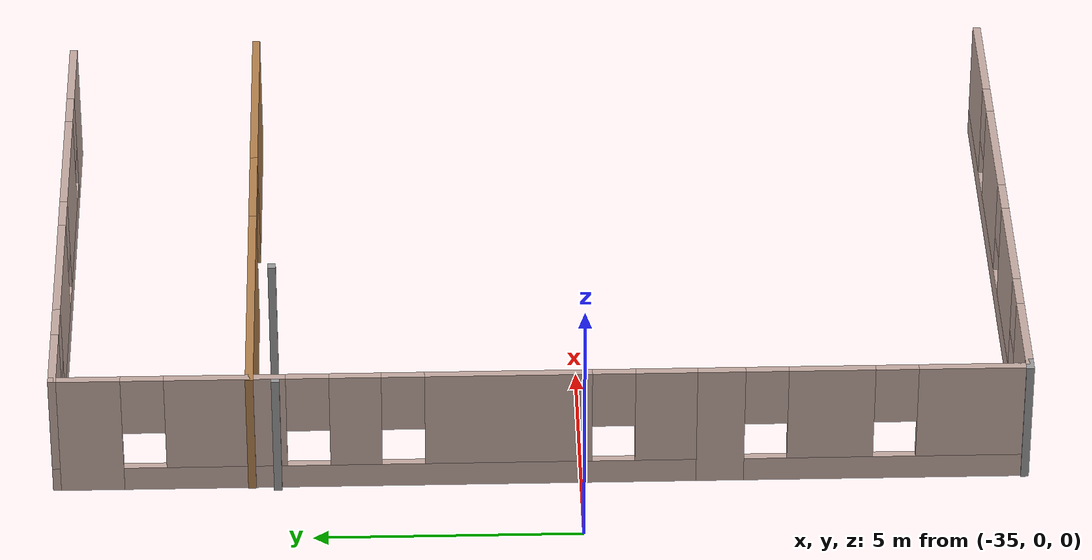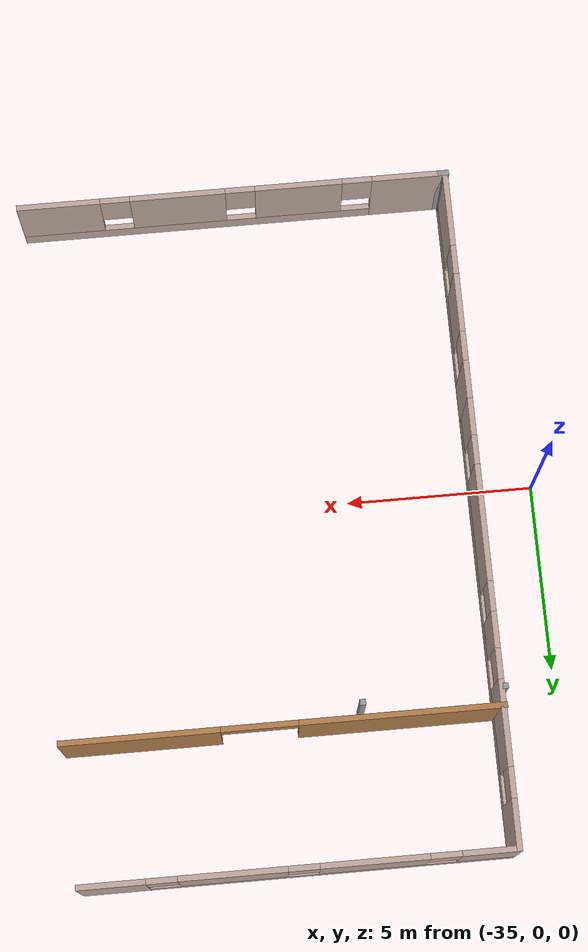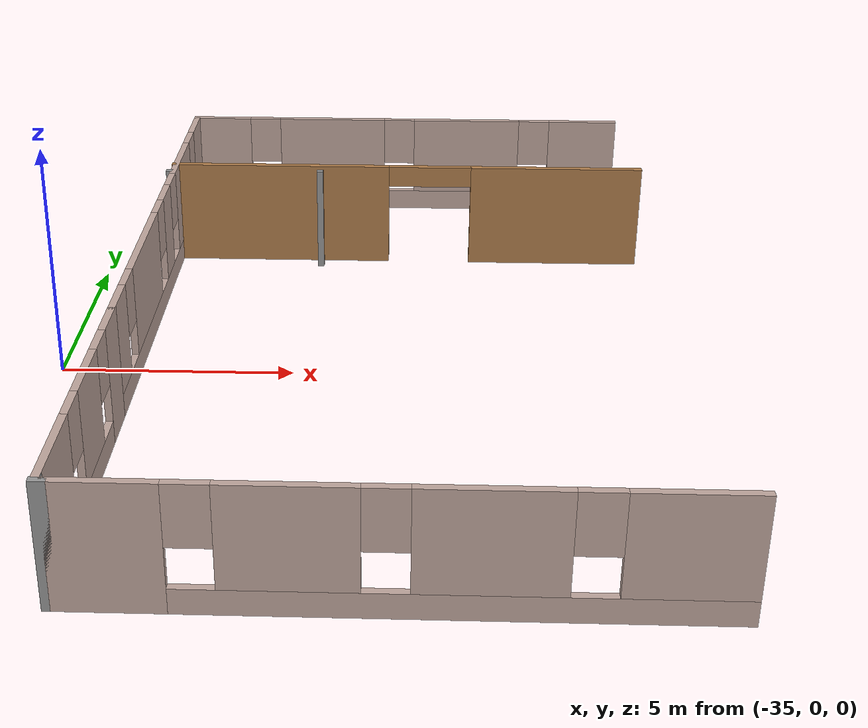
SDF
<sdf version="1.6">
 <model name="FloorPlan">
  <pose>-3.5402 -2.3631 0 0 -0 0</pose>
  <link name="Wall_13">
   <pose>-24.2574 12.1498 0 0 -0 3.14159</pose>
   <visual name="Wall_13_Visual_0">
    <pose>-4.7442 0 1.25 0 -0 0</pose>
    <geometry><box><size>1.7616 0.15 2.5</size></box></geometry>
    <material>
     <script><uri>file://media/materials/scripts/gazebo.material</uri><name>Gazebo/Grey</name></script>
     <ambient>0.760784 0.662745 0.627451 1</ambient>
    </material>
    <meta><layer>0</layer></meta>
   </visual>
   <collision name="Wall_13_Collision_0">
    <geometry><box><size>1.7616 0.15 2.5</size></box></geometry>
    <pose>-4.7442 0 1.25 0 -0 0</pose>
   </collision>
   <visual name="Wall_13_Visual_1">
    <pose>0.880798 0 0.25 0 -0 0</pose>
    <geometry><box><size>9.4884 0.15 0.5</size></box></geometry>
    <material>
     <script><uri>file://media/materials/scripts/gazebo.material</uri><name>Gazebo/Grey</name></script>
     <ambient>0.760784 0.662745 0.627451 1</ambient>
    </material>
    <meta><layer>0</layer></meta>
   </visual>
   <collision name="Wall_13_Collision_1">
    <geometry><box><size>9.4884 0.15 0.5</size></box></geometry>
    <pose>0.880798 0 0.25 0 -0 0</pose>
   </collision>
   <visual name="Wall_13_Visual_2">
    <pose>-1.67107 0 1.5 0 -0 0</pose>
    <geometry><box><size>2.78467 0.15 2</size></box></geometry>
    <material>
     <script><uri>file://media/materials/scripts/gazebo.material</uri><name>Gazebo/Grey</name></script>
     <ambient>0.760784 0.662745 0.627451 1</ambient>
    </material>
    <meta><layer>0</layer></meta>
   </visual>
   <collision name="Wall_13_Collision_2">
    <geometry><box><size>2.78467 0.15 2</size></box></geometry>
    <pose>-1.67107 0 1.5 0 -0 0</pose>
   </collision>
   <visual name="Wall_13_Visual_3">
    <pose>1.9136 0 1.5 0 -0 0</pose>
    <geometry><box><size>2.78467 0.15 2</size></box></geometry>
    <material>
     <script><uri>file://media/materials/scripts/gazebo.material</uri><name>Gazebo/Grey</name></script>
     <ambient>0.760784 0.662745 0.627451 1</ambient>
    </material>
    <meta><layer>0</layer></meta>
   </visual>
   <collision name="Wall_13_Collision_3">
    <geometry><box><size>2.78467 0.15 2</size></box></geometry>
    <pose>1.9136 0 1.5 0 -0 0</pose>
   </collision>
   <visual name="Wall_13_Visual_4">
    <pose>4.86547 0 1.5 0 -0 0</pose>
    <geometry><box><size>1.51907 0.15 2</size></box></geometry>
    <material>
     <script><uri>file://media/materials/scripts/gazebo.material</uri><name>Gazebo/Grey</name></script>
     <ambient>0.760784 0.662745 0.627451 1</ambient>
    </material>
    <meta><layer>0</layer></meta>
   </visual>
   <collision name="Wall_13_Collision_4">
    <geometry><box><size>1.51907 0.15 2</size></box></geometry>
    <pose>4.86547 0 1.5 0 -0 0</pose>
   </collision>
   <visual name="Wall_13_Visual_5">
    <pose>-3.4634 0 1.9 0 -0 0</pose>
    <geometry><box><size>0.8 0.15 1.2</size></box></geometry>
    <material>
     <script><uri>file://media/materials/scripts/gazebo.material</uri><name>Gazebo/Grey</name></script>
     <ambient>0.760784 0.662745 0.627451 1</ambient>
    </material>
    <meta><layer>0</layer></meta>
   </visual>
   <collision name="Wall_13_Collision_5">
    <geometry><box><size>0.8 0.15 1.2</size></box></geometry>
    <pose>-3.4634 0 1.9 0 -0 0</pose>
   </collision>
   <visual name="Wall_13_Visual_6">
    <pose>0.121265 0 1.9 0 -0 0</pose>
    <geometry><box><size>0.8 0.15 1.2</size></box></geometry>
    <material>
     <script><uri>file://media/materials/scripts/gazebo.material</uri><name>Gazebo/Grey</name></script>
     <ambient>0.760784 0.662745 0.627451 1</ambient>
    </material>
    <meta><layer>0</layer></meta>
   </visual>
   <collision name="Wall_13_Collision_6">
    <geometry><box><size>0.8 0.15 1.2</size></box></geometry>
    <pose>0.121265 0 1.9 0 -0 0</pose>
   </collision>
   <visual name="Wall_13_Visual_7">
    <pose>3.70593 0 1.9 0 -0 0</pose>
    <geometry><box><size>0.8 0.15 1.2</size></box></geometry>
    <material>
     <script><uri>file://media/materials/scripts/gazebo.material</uri><name>Gazebo/Grey</name></script>
     <ambient>0.760784 0.662745 0.627451 1</ambient>
    </material>
    <meta><layer>0</layer></meta>
   </visual>
   <collision name="Wall_13_Collision_7">
    <geometry><box><size>0.8 0.15 1.2</size></box></geometry>
    <pose>3.70593 0 1.9 0 -0 0</pose>
   </collision>
  </link>
  <link name="Wall_14">
   <pose>-29.8074 6.22478 0 0 -0 -1.5708</pose>
   <visual name="Wall_14_Visual_0">
    <pose>-5.33321 0 1.25 0 -0 0</pose>
    <geometry><box><size>1.33358 0.15 2.5</size></box></geometry>
    <material>
     <script><uri>file://media/materials/scripts/gazebo.material</uri><name>Gazebo/Grey</name></script>
     <ambient>0.760784 0.662745 0.627451 1</ambient>
    </material>
    <meta><layer>0</layer></meta>
   </visual>
   <collision name="Wall_14_Collision_0">
    <geometry><box><size>1.33358 0.15 2.5</size></box></geometry>
    <pose>-5.33321 0 1.25 0 -0 0</pose>
   </collision>
   <visual name="Wall_14_Visual_1">
    <pose>0.666789 0 0.25 0 -0 0</pose>
    <geometry><box><size>10.6664 0.15 0.5</size></box></geometry>
    <material>
     <script><uri>file://media/materials/scripts/gazebo.material</uri><name>Gazebo/Grey</name></script>
     <ambient>0.760784 0.662745 0.627451 1</ambient>
    </material>
    <meta><layer>0</layer></meta>
   </visual>
   <collision name="Wall_14_Collision_1">
    <geometry><box><size>10.6664 0.15 0.5</size></box></geometry>
    <pose>0.666789 0 0.25 0 -0 0</pose>
   </collision>
   <visual name="Wall_14_Visual_2">
    <pose>-2.7416 0 1.5 0 -0 0</pose>
    <geometry><box><size>2.24964 0.15 2</size></box></geometry>
    <material>
     <script><uri>file://media/materials/scripts/gazebo.material</uri><name>Gazebo/Grey</name></script>
     <ambient>0.760784 0.662745 0.627451 1</ambient>
    </material>
    <meta><layer>0</layer></meta>
   </visual>
   <collision name="Wall_14_Collision_2">
    <geometry><box><size>2.24964 0.15 2</size></box></geometry>
    <pose>-2.7416 0 1.5 0 -0 0</pose>
   </collision>
   <visual name="Wall_14_Visual_3">
    <pose>-0.333988 0 1.5 0 -0 0</pose>
    <geometry><box><size>0.965583 0.15 2</size></box></geometry>
    <material>
     <script><uri>file://media/materials/scripts/gazebo.material</uri><name>Gazebo/Grey</name></script>
     <ambient>0.760784 0.662745 0.627451 1</ambient>
    </material>
    <meta><layer>0</layer></meta>
   </visual>
   <collision name="Wall_14_Collision_3">
    <geometry><box><size>0.965583 0.15 2</size></box></geometry>
    <pose>-0.333988 0 1.5 0 -0 0</pose>
   </collision>
   <visual name="Wall_14_Visual_4">
    <pose>2.50164 0 1.5 0 -0 0</pose>
    <geometry><box><size>3.10568 0.15 2</size></box></geometry>
    <material>
     <script><uri>file://media/materials/scripts/gazebo.material</uri><name>Gazebo/Grey</name></script>
     <ambient>0.760784 0.662745 0.627451 1</ambient>
    </material>
    <meta><layer>0</layer></meta>
   </visual>
   <collision name="Wall_14_Collision_4">
    <geometry><box><size>3.10568 0.15 2</size></box></geometry>
    <pose>2.50164 0 1.5 0 -0 0</pose>
   </collision>
   <visual name="Wall_14_Visual_5">
    <pose>5.42724 0 1.5 0 -0 0</pose>
    <geometry><box><size>1.14552 0.15 2</size></box></geometry>
    <material>
     <script><uri>file://media/materials/scripts/gazebo.material</uri><name>Gazebo/Grey</name></script>
     <ambient>0.760784 0.662745 0.627451 1</ambient>
    </material>
    <meta><layer>0</layer></meta>
   </visual>
   <collision name="Wall_14_Collision_5">
    <geometry><box><size>1.14552 0.15 2</size></box></geometry>
    <pose>5.42724 0 1.5 0 -0 0</pose>
   </collision>
   <visual name="Wall_14_Visual_6">
    <pose>-4.26642 0 1.9 0 -0 0</pose>
    <geometry><box><size>0.8 0.15 1.2</size></box></geometry>
    <material>
     <script><uri>file://media/materials/scripts/gazebo.material</uri><name>Gazebo/Grey</name></script>
     <ambient>0.760784 0.662745 0.627451 1</ambient>
    </material>
    <meta><layer>0</layer></meta>
   </visual>
   <collision name="Wall_14_Collision_6">
    <geometry><box><size>0.8 0.15 1.2</size></box></geometry>
    <pose>-4.26642 0 1.9 0 -0 0</pose>
   </collision>
   <visual name="Wall_14_Visual_7">
    <pose>-1.21678 0 1.9 0 -0 0</pose>
    <geometry><box><size>0.8 0.15 1.2</size></box></geometry>
    <material>
     <script><uri>file://media/materials/scripts/gazebo.material</uri><name>Gazebo/Grey</name></script>
     <ambient>0.760784 0.662745 0.627451 1</ambient>
    </material>
    <meta><layer>0</layer></meta>
   </visual>
   <collision name="Wall_14_Collision_7">
    <geometry><box><size>0.8 0.15 1.2</size></box></geometry>
    <pose>-1.21678 0 1.9 0 -0 0</pose>
   </collision>
   <visual name="Wall_14_Visual_8">
    <pose>0.548803 0 1.9 0 -0 0</pose>
    <geometry><box><size>0.8 0.15 1.2</size></box></geometry>
    <material>
     <script><uri>file://media/materials/scripts/gazebo.material</uri><name>Gazebo/Grey</name></script>
     <ambient>0.760784 0.662745 0.627451 1</ambient>
    </material>
    <meta><layer>0</layer></meta>
   </visual>
   <collision name="Wall_14_Collision_8">
    <geometry><box><size>0.8 0.15 1.2</size></box></geometry>
    <pose>0.548803 0 1.9 0 -0 0</pose>
   </collision>
   <visual name="Wall_14_Visual_9">
    <pose>4.45449 0 1.9 0 -0 0</pose>
    <geometry><box><size>0.8 0.15 1.2</size></box></geometry>
    <material>
     <script><uri>file://media/materials/scripts/gazebo.material</uri><name>Gazebo/Grey</name></script>
     <ambient>0.760784 0.662745 0.627451 1</ambient>
    </material>
    <meta><layer>0</layer></meta>
   </visual>
   <collision name="Wall_14_Collision_9">
    <geometry><box><size>0.8 0.15 1.2</size></box></geometry>
    <pose>4.45449 0 1.9 0 -0 0</pose>
   </collision>
  </link>
  <link name="Wall_19">
   <collision name="Wall_19_Collision">
    <geometry><box><size>0.15 0.15 2.5</size></box></geometry>
    <pose>0 0 1.25 0 -0 0</pose>
   </collision>
   <visual name="Wall_19_Visual">
    <pose>0 0 1.25 0 -0 0</pose>
    <geometry><box><size>0.15 0.15 2.5</size></box></geometry>
    <material>
     <script><uri>file://media/materials/scripts/gazebo.material</uri><name>Gazebo/Grey</name></script>
     <ambient>1 1 1 1</ambient>
    </material>
    <meta><layer>0</layer></meta>
   </visual>
   <pose>-29.9047 8.03008 0 0 -0 0</pose>
  </link>
  <link name="Wall_23">
   <collision name="Wall_23_Collision">
    <geometry><box><size>0.15 0.15 2.5</size></box></geometry>
    <pose>0 0 1.25 0 -0 0</pose>
   </collision>
   <visual name="Wall_23_Visual">
    <pose>0 0 1.25 0 -0 0</pose>
    <geometry><box><size>0.15 0.15 2.5</size></box></geometry>
    <material>
     <script><uri>file://media/materials/scripts/gazebo.material</uri><name>Gazebo/Grey</name></script>
     <ambient>1 1 1 1</ambient>
    </material>
    <meta><layer>0</layer></meta>
   </visual>
   <pose>-26.2408 8.12916 0 0 -0 0</pose>
  </link>
  <link name="Wall_47">
   <collision name="Wall_47_Collision">
    <geometry><box><size>0.3 0.15 2.5</size></box></geometry>
    <pose>0 0 1.25 0 -0 0</pose>
   </collision>
   <visual name="Wall_47_Visual">
    <pose>0 0 1.25 0 -0 0</pose>
    <geometry><box><size>0.3 0.15 2.5</size></box></geometry>
    <material>
     <script><uri>file://media/materials/scripts/gazebo.material</uri><name>Gazebo/Grey</name></script>
     <ambient>1 1 1 1</ambient>
    </material>
    <meta><layer>0</layer></meta>
   </visual>
   <pose>-29.7609 -5.93407 0 0 -0 0</pose>
  </link>
  <link name="Wall_48">
   <pose>-24.0109 -5.93407 0 0 -0 0</pose>
   <visual name="Wall_48_Visual_0">
    <pose>-4.78369 0 1.25 0 -0 0</pose>
    <geometry><box><size>1.93261 0.15 2.5</size></box></geometry>
    <material>
     <script><uri>file://media/materials/scripts/gazebo.material</uri><name>Gazebo/Grey</name></script>
     <ambient>0.760784 0.662745 0.627451 1</ambient>
    </material>
    <meta><layer>0</layer></meta>
   </visual>
   <collision name="Wall_48_Collision_0">
    <geometry><box><size>1.93261 0.15 2.5</size></box></geometry>
    <pose>-4.78369 0 1.25 0 -0 0</pose>
   </collision>
   <visual name="Wall_48_Visual_1">
    <pose>0.966306 0 0.25 0 -0 0</pose>
    <geometry><box><size>9.56739 0.15 0.5</size></box></geometry>
    <material>
     <script><uri>file://media/materials/scripts/gazebo.material</uri><name>Gazebo/Grey</name></script>
     <ambient>0.760784 0.662745 0.627451 1</ambient>
    </material>
    <meta><layer>0</layer></meta>
   </visual>
   <collision name="Wall_48_Collision_1">
    <geometry><box><size>9.56739 0.15 0.5</size></box></geometry>
    <pose>0.966306 0 0.25 0 -0 0</pose>
   </collision>
   <visual name="Wall_48_Visual_2">
    <pose>-1.83906 0 1.5 0 -0 0</pose>
    <geometry><box><size>2.35665 0.15 2</size></box></geometry>
    <material>
     <script><uri>file://media/materials/scripts/gazebo.material</uri><name>Gazebo/Grey</name></script>
     <ambient>0.760784 0.662745 0.627451 1</ambient>
    </material>
    <meta><layer>0</layer></meta>
   </visual>
   <collision name="Wall_48_Collision_2">
    <geometry><box><size>2.35665 0.15 2</size></box></geometry>
    <pose>-1.83906 0 1.5 0 -0 0</pose>
   </collision>
   <visual name="Wall_48_Visual_3">
    <pose>1.42459 0 1.5 0 -0 0</pose>
    <geometry><box><size>2.57066 0.15 2</size></box></geometry>
    <material>
     <script><uri>file://media/materials/scripts/gazebo.material</uri><name>Gazebo/Grey</name></script>
     <ambient>0.760784 0.662745 0.627451 1</ambient>
    </material>
    <meta><layer>0</layer></meta>
   </visual>
   <collision name="Wall_48_Collision_3">
    <geometry><box><size>2.57066 0.15 2</size></box></geometry>
    <pose>1.42459 0 1.5 0 -0 0</pose>
   </collision>
   <visual name="Wall_48_Visual_4">
    <pose>4.62996 0 1.5 0 -0 0</pose>
    <geometry><box><size>2.24008 0.15 2</size></box></geometry>
    <material>
     <script><uri>file://media/materials/scripts/gazebo.material</uri><name>Gazebo/Grey</name></script>
     <ambient>0.760784 0.662745 0.627451 1</ambient>
    </material>
    <meta><layer>0</layer></meta>
   </visual>
   <collision name="Wall_48_Collision_4">
    <geometry><box><size>2.24008 0.15 2</size></box></geometry>
    <pose>4.62996 0 1.5 0 -0 0</pose>
   </collision>
   <visual name="Wall_48_Visual_5">
    <pose>-3.41739 0 1.9 0 -0 0</pose>
    <geometry><box><size>0.8 0.15 1.2</size></box></geometry>
    <material>
     <script><uri>file://media/materials/scripts/gazebo.material</uri><name>Gazebo/Grey</name></script>
     <ambient>0.760784 0.662745 0.627451 1</ambient>
    </material>
    <meta><layer>0</layer></meta>
   </visual>
   <collision name="Wall_48_Collision_5">
    <geometry><box><size>0.8 0.15 1.2</size></box></geometry>
    <pose>-3.41739 0 1.9 0 -0 0</pose>
   </collision>
   <visual name="Wall_48_Visual_6">
    <pose>-0.26074 0 1.9 0 -0 0</pose>
    <geometry><box><size>0.8 0.15 1.2</size></box></geometry>
    <material>
     <script><uri>file://media/materials/scripts/gazebo.material</uri><name>Gazebo/Grey</name></script>
     <ambient>0.760784 0.662745 0.627451 1</ambient>
    </material>
    <meta><layer>0</layer></meta>
   </visual>
   <collision name="Wall_48_Collision_6">
    <geometry><box><size>0.8 0.15 1.2</size></box></geometry>
    <pose>-0.26074 0 1.9 0 -0 0</pose>
   </collision>
   <visual name="Wall_48_Visual_7">
    <pose>3.10992 0 1.9 0 -0 0</pose>
    <geometry><box><size>0.8 0.15 1.2</size></box></geometry>
    <material>
     <script><uri>file://media/materials/scripts/gazebo.material</uri><name>Gazebo/Grey</name></script>
     <ambient>0.760784 0.662745 0.627451 1</ambient>
    </material>
    <meta><layer>0</layer></meta>
   </visual>
   <collision name="Wall_48_Collision_7">
    <geometry><box><size>0.8 0.15 1.2</size></box></geometry>
    <pose>3.10992 0 1.9 0 -0 0</pose>
   </collision>
  </link>
  <link name="Wall_56">
   <pose>-29.8074 -2.75022 0 0 -0 -1.5708</pose>
   <visual name="Wall_56_Visual_0">
    <pose>-2.60494 0 1.25 0 -0 0</pose>
    <geometry><box><size>1.04012 0.15 2.5</size></box></geometry>
    <material>
     <script><uri>file://media/materials/scripts/gazebo.material</uri><name>Gazebo/Grey</name></script>
     <ambient>0.760784 0.662745 0.627451 1</ambient>
    </material>
    <meta><layer>0</layer></meta>
   </visual>
   <collision name="Wall_56_Collision_0">
    <geometry><box><size>1.04012 0.15 2.5</size></box></geometry>
    <pose>-2.60494 0 1.25 0 -0 0</pose>
   </collision>
   <visual name="Wall_56_Visual_1">
    <pose>0.520059 0 0.25 0 -0 0</pose>
    <geometry><box><size>5.20988 0.15 0.5</size></box></geometry>
    <material>
     <script><uri>file://media/materials/scripts/gazebo.material</uri><name>Gazebo/Grey</name></script>
     <ambient>0.760784 0.662745 0.627451 1</ambient>
    </material>
    <meta><layer>0</layer></meta>
   </visual>
   <collision name="Wall_56_Collision_1">
    <geometry><box><size>5.20988 0.15 0.5</size></box></geometry>
    <pose>0.520059 0 0.25 0 -0 0</pose>
   </collision>
   <visual name="Wall_56_Visual_2">
    <pose>-0.481076 0 1.5 0 -0 0</pose>
    <geometry><box><size>1.60761 0.15 2</size></box></geometry>
    <material>
     <script><uri>file://media/materials/scripts/gazebo.material</uri><name>Gazebo/Grey</name></script>
     <ambient>0.760784 0.662745 0.627451 1</ambient>
    </material>
    <meta><layer>0</layer></meta>
   </visual>
   <collision name="Wall_56_Collision_2">
    <geometry><box><size>1.60761 0.15 2</size></box></geometry>
    <pose>-0.481076 0 1.5 0 -0 0</pose>
   </collision>
   <visual name="Wall_56_Visual_3">
    <pose>2.12386 0 1.5 0 -0 0</pose>
    <geometry><box><size>2.00227 0.15 2</size></box></geometry>
    <material>
     <script><uri>file://media/materials/scripts/gazebo.material</uri><name>Gazebo/Grey</name></script>
     <ambient>0.760784 0.662745 0.627451 1</ambient>
    </material>
    <meta><layer>0</layer></meta>
   </visual>
   <collision name="Wall_56_Collision_3">
    <geometry><box><size>2.00227 0.15 2</size></box></geometry>
    <pose>2.12386 0 1.5 0 -0 0</pose>
   </collision>
   <visual name="Wall_56_Visual_4">
    <pose>-1.68488 0 1.9 0 -0 0</pose>
    <geometry><box><size>0.8 0.15 1.2</size></box></geometry>
    <material>
     <script><uri>file://media/materials/scripts/gazebo.material</uri><name>Gazebo/Grey</name></script>
     <ambient>0.760784 0.662745 0.627451 1</ambient>
    </material>
    <meta><layer>0</layer></meta>
   </visual>
   <collision name="Wall_56_Collision_4">
    <geometry><box><size>0.8 0.15 1.2</size></box></geometry>
    <pose>-1.68488 0 1.9 0 -0 0</pose>
   </collision>
   <visual name="Wall_56_Visual_5">
    <pose>0.722731 0 1.9 0 -0 0</pose>
    <geometry><box><size>0.8 0.15 1.2</size></box></geometry>
    <material>
     <script><uri>file://media/materials/scripts/gazebo.material</uri><name>Gazebo/Grey</name></script>
     <ambient>0.760784 0.662745 0.627451 1</ambient>
    </material>
    <meta><layer>0</layer></meta>
   </visual>
   <collision name="Wall_56_Collision_5">
    <geometry><box><size>0.8 0.15 1.2</size></box></geometry>
    <pose>0.722731 0 1.9 0 -0 0</pose>
   </collision>
  </link>
  <link name="Wall_57">
   <collision name="Wall_57_Collision">
    <geometry><box><size>0.15 0.15 2.5</size></box></geometry>
    <pose>0 0 1.25 0 -0 0</pose>
   </collision>
   <visual name="Wall_57_Visual">
    <pose>0 0 1.25 0 -0 0</pose>
    <geometry><box><size>0.15 0.15 2.5</size></box></geometry>
    <material>
     <script><uri>file://media/materials/scripts/gazebo.material</uri><name>Gazebo/Grey</name></script>
     <ambient>1 1 1 1</ambient>
    </material>
    <meta><layer>0</layer></meta>
   </visual>
   <pose>-29.8074 -5.80023 0 0 -0 0</pose>
  </link>
  <link name="Wall_61">
   <pose>-24.1609 8.5116 0 0 -0 0</pose>
   <visual name="Wall_61_Visual_0">
    <pose>-3.07695 0 1.25 0 -0 0</pose>
    <geometry><box><size>5.34609 0.15 2.5</size></box></geometry>
    <material>
     <script><uri>file://media/materials/scripts/gazebo.material</uri><name>Gazebo/Wood</name></script>
     <ambient>1 1 1 1</ambient>
    </material>
    <meta><layer>0</layer></meta>
   </visual>
   <collision name="Wall_61_Collision_0">
    <geometry><box><size>5.34609 0.15 2.5</size></box></geometry>
    <pose>-3.07695 0 1.25 0 -0 0</pose>
   </collision>
   <visual name="Wall_61_Visual_1">
    <pose>3.67305 0 1.25 0 -0 0</pose>
    <geometry><box><size>4.15391 0.15 2.5</size></box></geometry>
    <material>
     <script><uri>file://media/materials/scripts/gazebo.material</uri><name>Gazebo/Wood</name></script>
     <ambient>1 1 1 1</ambient>
    </material>
    <meta><layer>0</layer></meta>
   </visual>
   <collision name="Wall_61_Collision_1">
    <geometry><box><size>4.15391 0.15 2.5</size></box></geometry>
    <pose>3.67305 0 1.25 0 -0 0</pose>
   </collision>
   <visual name="Wall_61_Visual_2">
    <pose>0.596094 0 2.25 0 -0 0</pose>
    <geometry><box><size>2 0.15 0.5</size></box></geometry>
    <material>
     <script><uri>file://media/materials/scripts/gazebo.material</uri><name>Gazebo/Wood</name></script>
     <ambient>1 1 1 1</ambient>
    </material>
    <meta><layer>0</layer></meta>
   </visual>
   <collision name="Wall_61_Collision_2">
    <geometry><box><size>2 0.15 0.5</size></box></geometry>
    <pose>0.596094 0 2.25 0 -0 0</pose>
   </collision>
  </link>
  <static>1</static>
 </model>
</sdf>
